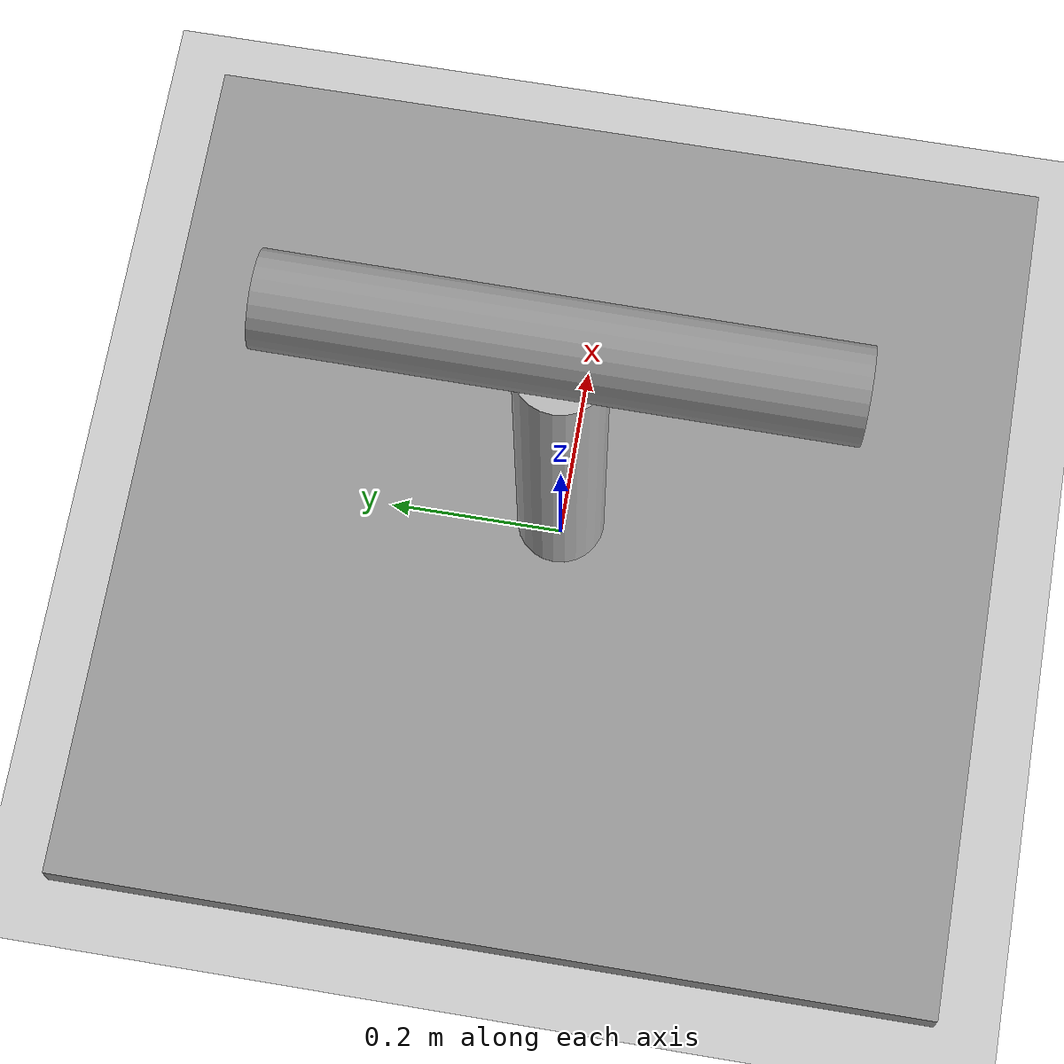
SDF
<?xml version="1.0"?>
<sdf version="1.4">
  <world name="default">
        <!-- Ground Plane -->
        <include>
            <uri>model://ground_plane</uri>
        </include>

        <include>
            <uri>model://sun</uri>
        </include>

        <include>
            <uri>model://t_model</uri>
        </include>

  </world>
</sdf>

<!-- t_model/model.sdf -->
<sdf version='1.6'>
  <model name='t_model'>
    <plugin name='set_joint_velocity_plugin' filename='libjoint_controller_plugin.so'/>
    <link name='link_0'>
      <pose frame=''>0 0 0.02 0 0 0</pose>
      <visual name='visual'>
        <geometry>
          <box>
            <size>1 1 0.04</size>
          </box>
        </geometry>
        <material>
          <lighting>1</lighting>
          <script>
            <uri>file://media/materials/scripts/gazebo.material</uri>
            <name>Gazebo/Grey</name>
          </script>
          <emissive>0 0 0 1</emissive>
        </material>
      </visual>
      <collision name="link_0_collision">
        <geometry>
          <box>
            <size>1 1 0.035</size>
          </box>
        </geometry>
      </collision>
    </link>
    <link name='link_1'>
      <pose >0 0 0.27 0 0 0</pose>
      <visual name='visual'>
        <geometry>
          <cylinder>
            <radius>0.05</radius>
            <length>0.5</length>
          </cylinder>
        </geometry>

      </visual>
      <collision name="link_1_collision">
        <geometry>
          <cylinder>
            <radius>0.05</radius>
            <length>0.5</length>
          </cylinder>
        </geometry>
      </collision>
    </link>
    <link name='link_2'>
      <inertial>
        <mass>0.00701193</mass>
        <inertia>
          <ixx>0.000238155</ixx>
          <ixy>0</ixy>
          <ixz>0</ixz>
          <iyy>0.000238155</iyy>
          <iyz>0</iyz>
          <izz>9.72896e-06</izz>
        </inertia>
        <pose frame=''>0 0 0 0 -0 0</pose>
      </inertial>
      <pose >0 0 0.575 1.58563 0 0</pose>
      <visual name='visual'>
        <pose >0 0 0 0 -0 0</pose>
        <geometry>
          <cylinder>
            <radius>0.05</radius>
            <length>0.6</length>
          </cylinder>
        </geometry>
        <material>
          <lighting>1</lighting>
          <script>
            <uri>file://media/materials/scripts/gazebo.material</uri>
            <name>Gazebo/Grey</name>
          </script>
          <emissive>0 0 0 1</emissive>
        </material>
      </visual>
    </link>
    <joint name='joint_0' type='fixed'>
      <parent>link_0</parent>
      <child>link_1</child>
    </joint>
    <joint name='joint_1' type='revolute'>
      <parent>link_1</parent>
      <child>link_2</child>
      <pose frame=''>0 0 0 0 -0 0</pose>
      <axis>
        <xyz>0 1 0</xyz>
        <limit>
          <lower>-1.79769e+308</lower>
          <upper>1.79769e+308</upper>
          <effort>-1</effort>
          <velocity>-1</velocity>
        </limit>
        <dynamics>
          <spring_reference>0</spring_reference>
          <spring_stiffness>0</spring_stiffness>
          <damping>0</damping>
        </dynamics>
      </axis>
      <physics>
        <ode>
          <limit>
            <cfm>0</cfm>
            <erp>0.2</erp>
          </limit>
          <suspension>
            <cfm>0</cfm>
            <erp>0.2</erp>
          </suspension>
        </ode>
      </physics>
    </joint>
  </model>
</sdf>
